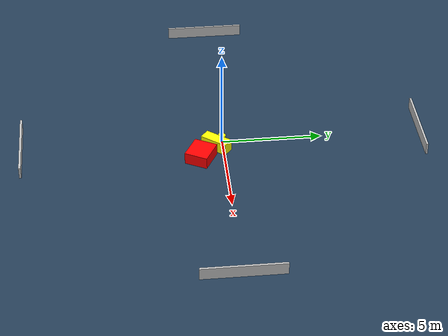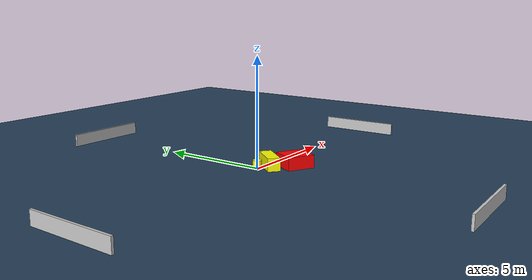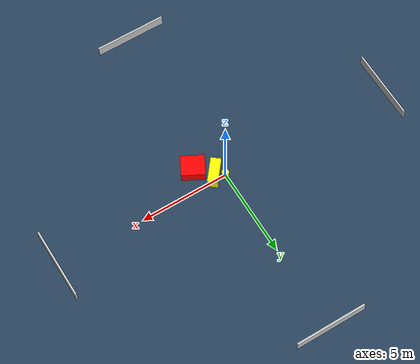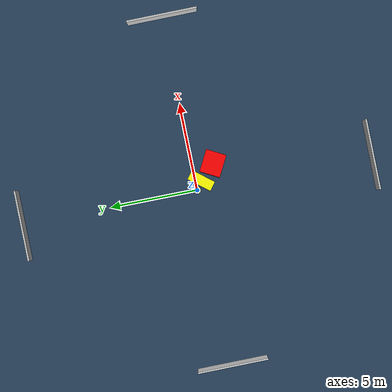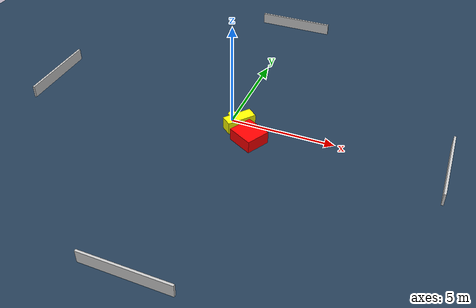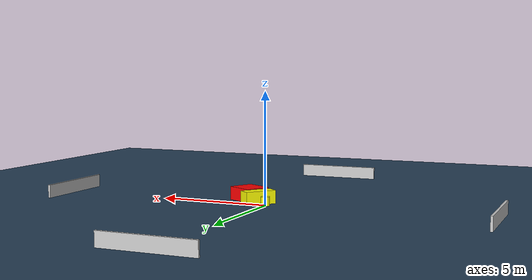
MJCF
<?xml version="1.0" ?>
<mujoco model="generated_environment">
  <option timestep="0.01" integrator="RK4" cone="elliptic"/>
  <default>
    <geom density="1"/>
  </default>
  <asset>
    <texture builtin="gradient" height="3072" name="skybox" rgb1="0.3 0.5 0.7" rgb2="0 0 0" type="skybox" width="512"/>
    <texture builtin="checker" height="300" name="groundplane" rgb1="0.2 0.3 0.4" rgb2="0.1 0.2 0.3" type="2d" width="300"/>
    <material name="groundplane" reflectance="0.2" texrepeat="5 5" texture="groundplane"/>
  </asset>
  <worldbody>
    <light dir="0 0 -1" directional="true" pos="0 0 1.5"/>
    <geom condim="3" friction="0.5 0.005 0.001" material="groundplane" name="floor" pos="0 0 0" size="0 0 0.05" type="plane"/>
    <body name="walls">
      <geom name="wall_1" condim="4" pos="-10.0 0.0 0.3" rgba="0.800000011920929 0.800000011920929 0.800000011920929 1.0" size="0.05 2.0 0.3" type="box"/>
      <geom name="wall_2" condim="4" pos="10.0 0.0 0.3" rgba="0.800000011920929 0.800000011920929 0.800000011920929 1.0" size="0.05 2.0 0.3" type="box"/>
      <geom name="wall_3" condim="4" pos="0.0 -10.0 0.3" rgba="0.800000011920929 0.800000011920929 0.800000011920929 1.0" size="2.0 0.05 0.3" type="box"/>
      <geom name="wall_4" condim="4" pos="0.0 10.0 0.3" rgba="0.800000011920929 0.800000011920929 0.800000011920929 1.0" size="2.0 0.05 0.3" type="box"/>
    </body>
    <body name="robot">
      <joint name="joint_x" type="slide" pos="0 0 0" axis="1 0 0"/>
      <joint name="joint_y" type="slide" pos="0 0 0" axis="0 1 0"/>
      <geom name="robot" type="cylinder" pos="0.0 0.0 0.2" size="0.2 0.2 0.0" mass="5.0" friction="1.0 0.005 0.0001" condim="4" rgba="1.0 1.0 0.0 1.0"/>
    </body>
    <body name="obstacle_1_movable">
      <geom name="obstacle_1_movable" condim="4" pos="0.4818379404390065 -0.3253026129042712 0.3" euler="0 0 231.1692940351357" friction="0.0 0.005 0.001" rgba="1.0 1.0 0.0 1.0" size="0.714463186572887 0.2873408448970372 0.3" type="box" mass="0.1"/>
      <joint type="free"/>
    </body>
    <body name="obstacle_2_static">
      <geom name="obstacle_2_static" condim="4" pos="1.2945532068497656 -1.1564940557380057 0.3" euler="0 0 331.7808010320419" friction="0.0 0.005 0.001" rgba="1.0 0.0 0.0 1.0" size="0.645381897972189 0.5864738972589352 0.3" type="box"/>
    </body>
  </worldbody>
  <actuator>
    <motor name="actuator_x" joint="joint_x" gear="1" ctrlrange="-1 1"/>
    <motor name="actuator_y" joint="joint_y" gear="1" ctrlrange="-1 1"/>
  </actuator>
</mujoco>
